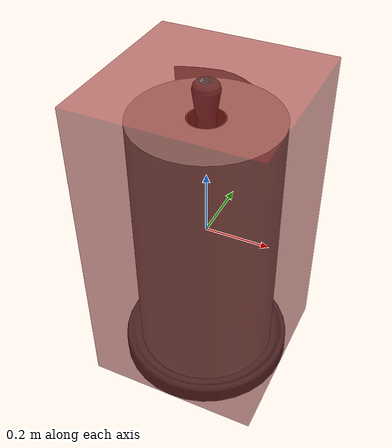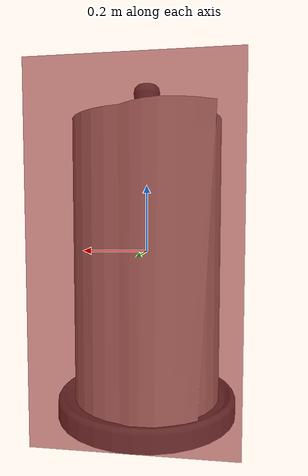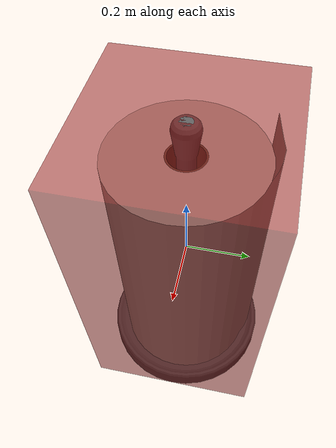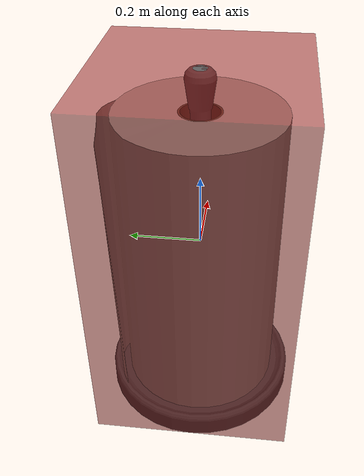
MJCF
<mujoco model="model">
  <asset>
    <texture file="visuals/material_0.png" name="tex-model" type="2d"/>
    <texture type="2d" name="image0" file="visuals/image0.png"/>
    <texture type="2d" name="image1" file="visuals/image1.png"/>
    <material name="model" reflectance="0.5" texrepeat="1 1" texture="tex-model" texuniform="false"/>
    <material name="metal" specular="0.5" shininess="0.055367579" rgba="0.355950 0.355950 0.355950 1.0"/>
    <material name="paperSide" texture="image0" specular="0.5" shininess="0.0"/>
    <material name="paperTopAndBottom" texture="image1" specular="0.5" shininess="0.0"/>
    <material name="paperboard" specular="0.5" shininess="0.0" rgba="0.327778 0.266356 0.198069 1.0"/>
    <mesh file="visuals/model_0.obj" name="model_0_vis" scale="1 1 1"/>
    <mesh file="visuals/model_1.obj" name="model_1_vis" scale="1 1 1"/>
    <mesh file="visuals/model_2.obj" name="model_2_vis" scale="1 1 1"/>
    <mesh file="visuals/model_3.obj" name="model_3_vis" scale="1 1 1"/>
  </asset>
  <default>
    <default class="visual">
      <geom conaffinity="0" contype="0" group="1" type="mesh"/>
    </default>
    <default class="collision">
      <geom group="0" rgba="0.5 0 0 0.5"/>
    </default>
    <default class="region">
      <geom group="1" conaffinity="0" contype="0" rgba="0 1 0 0"/>
    </default>
  </default>
  <worldbody>
    <body>
      <!-- exterior bounding box points -->
      <!-- interior bounding box points -->
      <body name="object">
        <geom solimp="0.998 0.998 0.001" solref="0.001 1" density="100" friction="0.95 0.3 0.1" type="mesh" mesh="model_0_vis" material="paperboard" class="visual"/>
        <geom solimp="0.998 0.998 0.001" solref="0.001 1" density="100" friction="0.95 0.3 0.1" type="mesh" mesh="model_1_vis" material="paperTopAndBottom" class="visual"/>
        <geom solimp="0.998 0.998 0.001" solref="0.001 1" density="100" friction="0.95 0.3 0.1" type="mesh" mesh="model_2_vis" material="paperSide" class="visual"/>
        <geom solimp="0.998 0.998 0.001" solref="0.001 1" density="100" friction="0.95 0.3 0.1" type="mesh" mesh="model_3_vis" material="metal" class="visual"/>
        <geom class="collision" type="box" pos="0 0 0" size="0.2740758035431492 0.2740758378026246 0.5"/>
        <geom class="region" name="reg_main" type="box" pos="0.0 0.0 0.0" size="0.2740758035431492 0.2740758378026246 0.5"/>
      </body>
    </body>
  </worldbody>
</mujoco>
